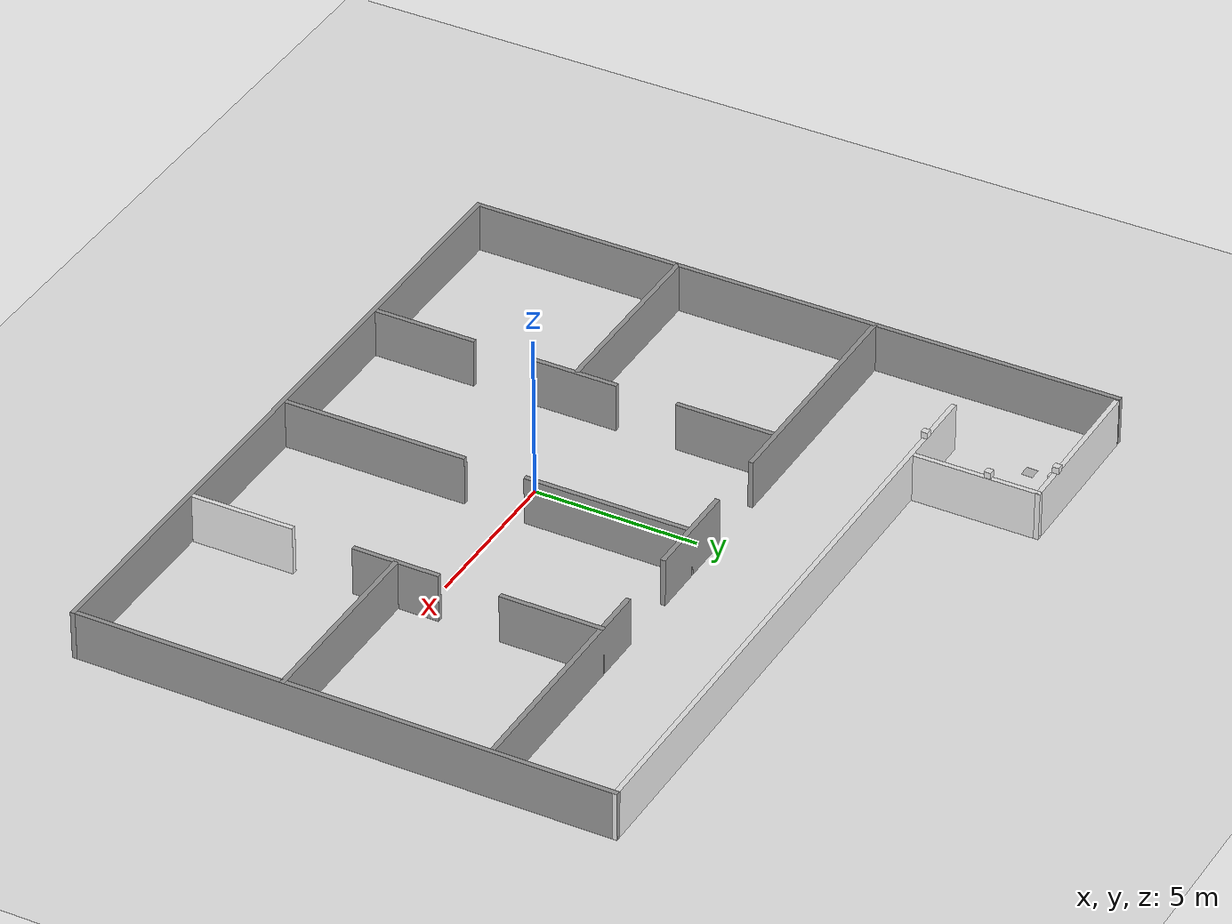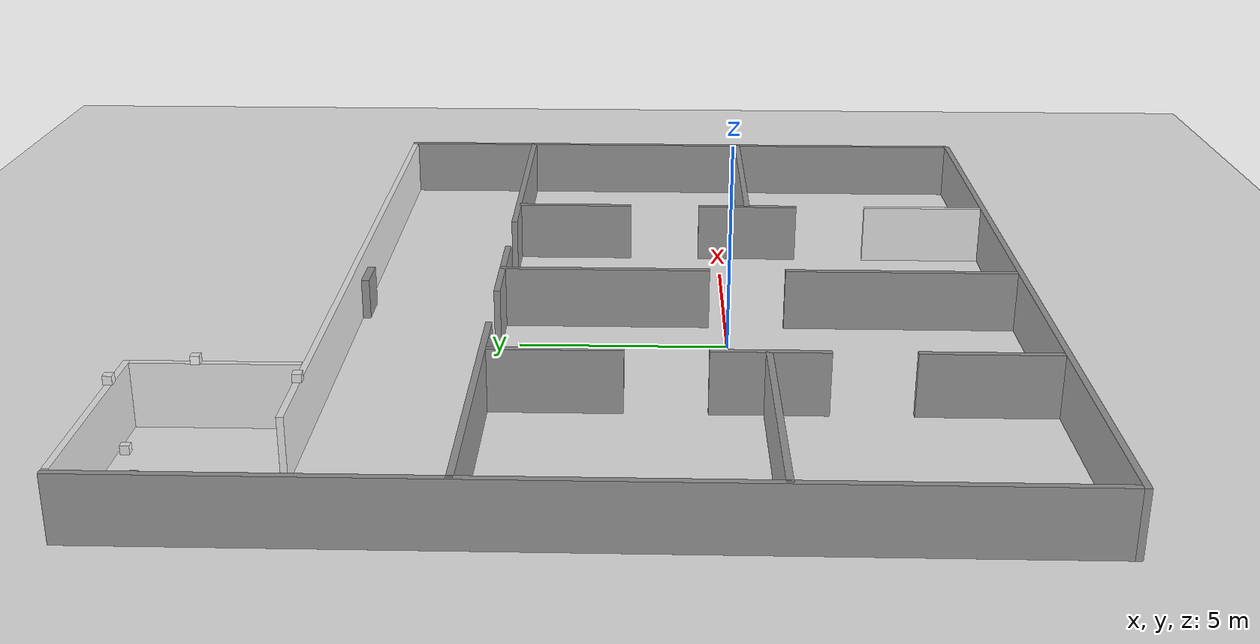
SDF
<sdf version="1.7">
 <world name="default">
  <scene><ambient>0.7 0.7 0.7 1</ambient><shadows>false</shadows></scene>
  <light name="sun" type="directional">
   <cast_shadows>0</cast_shadows>
   <pose>0 0 40 0 -0 0</pose>
   <diffuse>1 1 1 1</diffuse>
   <specular>0 0 0 1</specular>
   <attenuation>
    <range>1000</range>
    <constant>0.9</constant>
    <linear>0.01</linear>
    <quadratic>0.001</quadratic>
   </attenuation>
   <direction>-0.5 0.1 -0.9</direction>
   <spot><inner_angle>0</inner_angle><outer_angle>0</outer_angle><falloff>0</falloff></spot>
  </light>
  <model name="ground_plane">
   <static>1</static>
   <link name="link">
    <collision name="collision">
     <geometry><plane><normal>0 0 1</normal><size>100 100</size></plane></geometry>
     <surface>
      <contact><collide_bitmask>65535</collide_bitmask></contact>
      <friction><ode><mu>100</mu><mu2>50</mu2></ode></friction>
     </surface>
    </collision>
    <visual name="visual">
     <cast_shadows>0</cast_shadows>
     <geometry><plane><normal>0 0 1</normal><size>100 100</size></plane></geometry>
     <material>
      <script><uri>file://media/materials/scripts/gazebo.material</uri><name>Gazebo/White</name></script>
     </material>
    </visual>
   </link>
  </model>
  <gravity>0 0 -9.8</gravity>
  <magnetic_field>6e-06 2.3e-05 -4.2e-05</magnetic_field>
  <atmosphere type="adiabatic"/>
  <physics type="ode">
   <max_step_size>0.001</max_step_size>
   <real_time_factor>1</real_time_factor>
   <real_time_update_rate>1000</real_time_update_rate>
  </physics>
  <scene><ambient>0.4 0.4 0.4 1</ambient><background>0.7 0.7 0.7 1</background><shadows>1</shadows></scene>
  <spherical_coordinates>
   <surface_model>EARTH_WGS84</surface_model>
   <latitude_deg>0</latitude_deg>
   <longitude_deg>0</longitude_deg>
   <elevation>0</elevation>
   <heading_deg>0</heading_deg>
  </spherical_coordinates>
  <model name="Untitled">
   <pose>1.32665 2.93009 0 0 -0 0</pose>
   <link name="Wall_0">
    <collision name="Wall_0_Collision">
     <geometry><box><size>20.15 0.15 1.5</size></box></geometry>
     <pose>0 0 0.75 0 -0 0</pose>
    </collision>
    <visual name="Wall_0_Visual">
     <pose>0 0 0.75 0 -0 0</pose>
     <geometry><box><size>20.15 0.15 1.5</size></box></geometry>
     <material>
      <script><uri>file://media/materials/scripts/gazebo.material</uri><name>Gazebo/Grey</name></script>
      <ambient>0.1 0.1 0.1 1</ambient>
     </material>
     <meta><layer>0</layer></meta>
    </visual>
    <pose>-11 0.074999 0 0 -0 1.5708</pose>
   </link>
   <link name="Wall_15">
    <collision name="Wall_15_Collision">
     <geometry><box><size>7.5 0.15 1.5</size></box></geometry>
     <pose>0 0 0.75 0 -0 0</pose>
    </collision>
    <visual name="Wall_15_Visual">
     <pose>0 0 0.75 0 -0 0</pose>
     <geometry><box><size>7.5 0.15 1.5</size></box></geometry>
     <material>
      <script><uri>file://media/materials/scripts/gazebo.material</uri><name>Gazebo/Grey</name></script>
      <ambient>0.1 0.1 0.1 1</ambient>
     </material>
     <meta><layer>0</layer></meta>
    </visual>
    <pose>7.259 2.575 0 0 -0 3.14159</pose>
   </link>
   <link name="Wall_18">
    <collision name="Wall_18_Collision">
     <geometry><box><size>3.15 0.15 1.5</size></box></geometry>
     <pose>0 0 0.75 0 -0 0</pose>
    </collision>
    <visual name="Wall_18_Visual">
     <pose>0 0 0.75 0 -0 0</pose>
     <geometry><box><size>3.15 0.15 1.5</size></box></geometry>
     <material>
      <script><uri>file://media/materials/scripts/gazebo.material</uri><name>Gazebo/Grey</name></script>
      <ambient>0.1 0.1 0.1 1</ambient>
     </material>
     <meta><layer>0</layer></meta>
    </visual>
    <pose>0 2.575 0 0 -0 0</pose>
   </link>
   <link name="Wall_2">
    <collision name="Wall_2_Collision">
     <geometry><box><size>16.3 0.15 1.5</size></box></geometry>
     <pose>0 0 0.75 0 -0 0</pose>
    </collision>
    <visual name="Wall_2_Visual">
     <pose>0 0 0.75 0 -0 0</pose>
     <geometry><box><size>16.3 0.15 1.5</size></box></geometry>
     <material>
      <script><uri>file://media/materials/scripts/gazebo.material</uri><name>Gazebo/Grey</name></script>
      <ambient>0.1 0.1 0.1 1</ambient>
     </material>
     <meta><layer>0</layer></meta>
    </visual>
    <pose>11 -1.85 0 0 -0 1.5708</pose>
   </link>
   <link name="Wall_21">
    <collision name="Wall_21_Collision">
     <geometry><box><size>3.15 0.15 1.5</size></box></geometry>
     <pose>0 0 0.75 0 -0 0</pose>
    </collision>
    <visual name="Wall_21_Visual">
     <pose>0 0 0.75 0 -0 0</pose>
     <geometry><box><size>3.15 0.15 1.5</size></box></geometry>
     <material>
      <script><uri>file://media/materials/scripts/gazebo.material</uri><name>Gazebo/Grey</name></script>
      <ambient>0.1 0.1 0.1 1</ambient>
     </material>
     <meta><layer>0</layer></meta>
    </visual>
    <pose>-5 1.075 0 0 -0 -1.5708</pose>
   </link>
   <link name="Wall_25">
    <collision name="Wall_25_Collision">
     <geometry><box><size>3.15 0.15 1.5</size></box></geometry>
     <pose>0 0 0.75 0 -0 0</pose>
    </collision>
    <visual name="Wall_25_Visual">
     <pose>0 0 0.75 0 -0 0</pose>
     <geometry><box><size>3.15 0.15 1.5</size></box></geometry>
     <material>
      <script><uri>file://media/materials/scripts/gazebo.material</uri><name>Gazebo/Grey</name></script>
      <ambient>0.1 0.1 0.1 1</ambient>
     </material>
     <meta><layer>0</layer></meta>
    </visual>
    <pose>-5 -8.425 0 0 -0 1.5708</pose>
   </link>
   <link name="Wall_27">
    <collision name="Wall_27_Collision">
     <geometry><box><size>2.65 0.15 1.5</size></box></geometry>
     <pose>0 0 0.75 0 -0 0</pose>
    </collision>
    <visual name="Wall_27_Visual">
     <pose>0 0 0.75 0 -0 0</pose>
     <geometry><box><size>2.65 0.15 1.5</size></box></geometry>
     <material>
      <script><uri>file://media/materials/scripts/gazebo.material</uri><name>Gazebo/Grey</name></script>
      <ambient>0.1 0.1 0.1 1</ambient>
     </material>
     <meta><layer>0</layer></meta>
    </visual>
    <pose>-5 -3.675 0 0 -0 -1.5708</pose>
   </link>
   <link name="Wall_29">
    <collision name="Wall_29_Collision">
     <geometry><box><size>6 0.15 1.5</size></box></geometry>
     <pose>0 0 0.75 0 -0 0</pose>
    </collision>
    <visual name="Wall_29_Visual">
     <pose>0 0 0.75 0 -0 0</pose>
     <geometry><box><size>6 0.15 1.5</size></box></geometry>
     <material>
      <script><uri>file://media/materials/scripts/gazebo.material</uri><name>Gazebo/Grey</name></script>
      <ambient>0.1 0.1 0.1 1</ambient>
     </material>
     <meta><layer>0</layer></meta>
    </visual>
    <pose>-8.017 -3.638 0 0 -0 3.14159</pose>
   </link>
   <link name="Wall_31">
    <collision name="Wall_31_Collision">
     <geometry><box><size>5.15 0.15 1.5</size></box></geometry>
     <pose>0 0 0.75 0 -0 0</pose>
    </collision>
    <visual name="Wall_31_Visual">
     <pose>0 0 0.75 0 -0 0</pose>
     <geometry><box><size>5.15 0.15 1.5</size></box></geometry>
     <material>
      <script><uri>file://media/materials/scripts/gazebo.material</uri><name>Gazebo/Grey</name></script>
      <ambient>0.1 0.1 0.1 1</ambient>
     </material>
     <meta><layer>0</layer></meta>
    </visual>
    <pose>0 0.074999 0 0 -0 -1.5708</pose>
   </link>
   <link name="Wall_33">
    <collision name="Wall_33_Collision">
     <geometry><box><size>5.65 0.15 1.5</size></box></geometry>
     <pose>0 0 0.75 0 -0 0</pose>
    </collision>
    <visual name="Wall_33_Visual">
     <pose>0 0 0.75 0 -0 0</pose>
     <geometry><box><size>5.65 0.15 1.5</size></box></geometry>
     <material>
      <script><uri>file://media/materials/scripts/gazebo.material</uri><name>Gazebo/Grey</name></script>
      <ambient>0.1 0.1 0.1 1</ambient>
     </material>
     <meta><layer>0</layer></meta>
    </visual>
    <pose>0 -7.175 0 0 -0 1.5708</pose>
   </link>
   <link name="Wall_35">
    <collision name="Wall_35_Collision">
     <geometry><box><size>3.15 0.15 1.5</size></box></geometry>
     <pose>0 0 0.75 0 -0 0</pose>
    </collision>
    <visual name="Wall_35_Visual">
     <pose>0 0 0.75 0 -0 0</pose>
     <geometry><box><size>3.15 0.15 1.5</size></box></geometry>
     <material>
      <script><uri>file://media/materials/scripts/gazebo.material</uri><name>Gazebo/Grey</name></script>
      <ambient>0.1 0.1 0.1 1</ambient>
     </material>
     <meta><layer>0</layer></meta>
    </visual>
    <pose>5 1.075 0 0 -0 -1.5708</pose>
   </link>
   <link name="Wall_37">
    <collision name="Wall_37_Collision">
     <geometry><box><size>2.65 0.15 1.5</size></box></geometry>
     <pose>0 0 0.75 0 -0 0</pose>
    </collision>
    <visual name="Wall_37_Visual">
     <pose>0 0 0.75 0 -0 0</pose>
     <geometry><box><size>2.65 0.15 1.5</size></box></geometry>
     <material>
      <script><uri>file://media/materials/scripts/gazebo.material</uri><name>Gazebo/Grey</name></script>
      <ambient>0.1 0.1 0.1 1</ambient>
     </material>
     <meta><layer>0</layer></meta>
    </visual>
    <pose>5 -3.675 0 0 -0 -1.5708</pose>
   </link>
   <link name="Wall_39">
    <collision name="Wall_39_Collision">
     <geometry><box><size>6.056 0.15 1.5</size></box></geometry>
     <pose>0 0 0.75 0 -0 0</pose>
    </collision>
    <visual name="Wall_39_Visual">
     <pose>0 0 0.75 0 -0 0</pose>
     <geometry><box><size>6.056 0.15 1.5</size></box></geometry>
     <material>
      <script><uri>file://media/materials/scripts/gazebo.material</uri><name>Gazebo/Grey</name></script>
      <ambient>0.1 0.1 0.1 1</ambient>
     </material>
     <meta><layer>0</layer></meta>
    </visual>
    <pose>8.047 -3.663 0 0 -0 0</pose>
   </link>
   <link name="Wall_4">
    <collision name="Wall_4_Collision">
     <geometry><box><size>19.65 0.15 1.5</size></box></geometry>
     <pose>0 0 0.75 0 -0 0</pose>
    </collision>
    <visual name="Wall_4_Visual">
     <pose>0 0 0.75 0 -0 0</pose>
     <geometry><box><size>19.65 0.15 1.5</size></box></geometry>
     <material>
      <script><uri>file://media/materials/scripts/gazebo.material</uri><name>Gazebo/White</name></script>
      <ambient>0.9 0.9 0.9 1</ambient>
     </material>
     <meta><layer>0</layer></meta>
     <cast_shadows>0</cast_shadows>
    </visual>
    <pose>1.25 6.225 0 0 -0 0</pose>
   </link>
   <link name="Wall_42">
    <collision name="Wall_42_Collision">
     <geometry><box><size>3.15 0.15 1.5</size></box></geometry>
     <pose>0 0 0.75 0 -0 0</pose>
    </collision>
    <visual name="Wall_42_Visual">
     <pose>0 0 0.75 0 -0 0</pose>
     <geometry><box><size>3.15 0.15 1.5</size></box></geometry>
     <material>
      <script><uri>file://media/materials/scripts/gazebo.material</uri><name>Gazebo/White</name></script>
      <ambient>0.9 0.9 0.9 1</ambient>
     </material>
     <meta><layer>0</layer></meta>
    </visual>
    <pose>5 -8.425 0 0 -0 1.5708</pose>
   </link>
   <link name="Wall_45">
    <collision name="Wall_45_Collision">
     <geometry><box><size>3.841 0.15 1.5</size></box></geometry>
     <pose>0 0 0.75 0 -0 0</pose>
    </collision>
    <visual name="Wall_45_Visual">
     <pose>0 0 0.75 0 -0 0</pose>
     <geometry><box><size>3.841 0.15 1.5</size></box></geometry>
     <material>
      <script><uri>file://media/materials/scripts/gazebo.material</uri><name>Gazebo/White</name></script>
      <ambient>0.9 0.9 0.9 1</ambient>
     </material>
     <cast_shadows>0</cast_shadows>
     <meta><layer>0</layer></meta>
    </visual>
    <pose>-5.955 8.2295 0 0 -0 1.5708</pose>
   </link>
   <link name="Wall_47">
    <collision name="Wall_47_Collision">
     <geometry><box><size>5 0.15 1.5</size></box></geometry>
     <pose>0 0 0.75 0 -0 0</pose>
    </collision>
    <visual name="Wall_47_Visual">
     <pose>0 0 0.75 0 -0 0</pose>
     <geometry><box><size>5 0.15 1.5</size></box></geometry>
     <material>
      <script><uri>file://media/materials/scripts/gazebo.material</uri><name>Gazebo/White</name></script>
      <ambient>0.9 0.9 0.9 1</ambient>
     </material>
     <meta><layer>0</layer></meta>
     <cast_shadows>0</cast_shadows>
    </visual>
    <pose>-8.38 10.075 0 0 -0 3.14159</pose>
   </link>
   <link name="Wall_6">
    <collision name="Wall_6_Collision">
     <geometry><box><size>22.15 0.15 1.5</size></box></geometry>
     <pose>0 0 0.75 0 -0 0</pose>
    </collision>
    <visual name="Wall_6_Visual">
     <pose>0 0 0.75 0 -0 0</pose>
     <geometry><box><size>22.15 0.15 1.5</size></box></geometry>
     <material>
      <script><uri>file://media/materials/scripts/gazebo.material</uri><name>Gazebo/Grey</name></script>
      <ambient>0.1 0.1 0.1 1</ambient>
     </material>
     <meta><layer>0</layer></meta>
    </visual>
    <pose>0 -10.075 0 0 -0 0</pose>
   </link>
   <link name="Wall_8">
    <collision name="Wall_8_Collision">
     <geometry><box><size>7.5 0.15 1.5</size></box></geometry>
     <pose>0 0 0.75 0 -0 0</pose>
    </collision>
    <visual name="Wall_8_Visual">
     <pose>0 0 0.75 0 -0 0</pose>
     <geometry><box><size>7.5 0.15 1.5</size></box></geometry>
     <material>
      <script><uri>file://media/materials/scripts/gazebo.material</uri><name>Gazebo/Grey</name></script>
      <ambient>0.1 0.1 0.1 1</ambient>
     </material>
     <meta><layer>0</layer></meta>
    </visual>
    <pose>-7.253 2.575 0 0 -0 0</pose>
   </link>
   <static>1</static>
  </model>
  <model name="marker11_box">
   <link name="marker">
    <inertial>
     <mass>0.1</mass>
     <inertia><ixx>0</ixx><ixy>0</ixy><ixz>0</ixz><iyy>0</iyy><iyz>0</iyz><izz>0</izz></inertia>
    </inertial>
    <self_collide>1</self_collide>
    <pose>-0.76428 -0.101106 0.120004 -0.015494 1.56996 -0.015507</pose>
    <visual name="visual">
     <geometry><box><size>0.2 0.2 0.001</size></box></geometry>
     <material>
      <script>
       <uri>model://marker11/material/scripts</uri>
       <uri>model://marker11/material/textures</uri>
       <name>Aruco/marker11</name>
      </script>
      <shader type="pixel"><normal_map>__default__</normal_map></shader>
      <emissive>0 0 0 1</emissive>
      <ambient>1 1 1 1</ambient>
      <diffuse>1 1 1 1</diffuse>
      <specular>0 0 0 1</specular>
     </material>
     <cast_shadows>0</cast_shadows>
    </visual>
    <collision name="collision">
     <geometry><box><size>0.2 0.2 0.02</size></box></geometry>
     <surface>
      <friction>
       <ode><mu>1</mu><mu2>1</mu2><fdir1>0 0 0</fdir1><slip1>0</slip1><slip2>0</slip2></ode>
       <torsional>
        <coefficient>1</coefficient>
        <patch_radius>0</patch_radius>
        <surface_radius>0</surface_radius>
        <use_patch_radius>1</use_patch_radius>
        <ode><slip>0</slip></ode>
       </torsional>
      </friction>
      <bounce><restitution_coefficient>0</restitution_coefficient><threshold>1e+06</threshold></bounce>
      <contact>
       <collide_without_contact>0</collide_without_contact>
       <collide_without_contact_bitmask>1</collide_without_contact_bitmask>
       <collide_bitmask>1</collide_bitmask>
       <ode>
        <soft_cfm>0</soft_cfm>
        <soft_erp>0.2</soft_erp>
        <kp>1e+13</kp>
        <kd>1</kd>
        <max_vel>0.01</max_vel>
        <min_depth>0</min_depth>
       </ode>
       <bullet>
        <split_impulse>1</split_impulse>
        <split_impulse_penetration_threshold>-0.01</split_impulse_penetration_threshold>
        <soft_cfm>0</soft_cfm>
        <soft_erp>0.2</soft_erp>
        <kp>1e+13</kp>
        <kd>1</kd>
       </bullet>
      </contact>
     </surface>
    </collision>
   </link>
   <link name="link_1">
    <inertial>
     <mass>1</mass>
     <inertia>
      <ixx>0.166667</ixx>
      <ixy>0</ixy>
      <ixz>0</ixz>
      <iyy>0.166667</iyy>
      <iyz>0</iyz>
      <izz>0.166667</izz>
     </inertia>
    </inertial>
    <pose>-0.86428 -0.101106 0.12 -1.3e-05 -4.2e-05 0</pose>
    <visual name="visual">
     <geometry><box><size>0.2 0.2 0.2</size></box></geometry>
     <material>
      <lighting>1</lighting>
      <script><uri>file://media/materials/scripts/gazebo.material</uri><name>Gazebo/White</name></script>
      <shader type="pixel"><normal_map>__default__</normal_map></shader>
      <emissive>0 0 0 1</emissive>
      <ambient>0.9 0.9 0.9 1</ambient>
      <diffuse>0.7 0.7 0.7 1</diffuse>
      <specular>0.01 0.01 0.01 1</specular>
     </material>
     <cast_shadows>0</cast_shadows>
    </visual>
    <collision name="collision">
     <geometry><box><size>0.2 0.2 0.2</size></box></geometry>
     <surface>
      <friction>
       <ode><mu>1</mu><mu2>1</mu2><fdir1>0 0 0</fdir1><slip1>0</slip1><slip2>0</slip2></ode>
       <torsional>
        <coefficient>1</coefficient>
        <patch_radius>0</patch_radius>
        <surface_radius>0</surface_radius>
        <use_patch_radius>1</use_patch_radius>
        <ode><slip>0</slip></ode>
       </torsional>
      </friction>
      <bounce><restitution_coefficient>0</restitution_coefficient><threshold>1e+06</threshold></bounce>
      <contact>
       <collide_without_contact>0</collide_without_contact>
       <collide_without_contact_bitmask>1</collide_without_contact_bitmask>
       <collide_bitmask>1</collide_bitmask>
       <ode>
        <soft_cfm>0</soft_cfm>
        <soft_erp>0.2</soft_erp>
        <kp>1e+13</kp>
        <kd>1</kd>
        <max_vel>0.01</max_vel>
        <min_depth>0</min_depth>
       </ode>
       <bullet>
        <split_impulse>1</split_impulse>
        <split_impulse_penetration_threshold>-0.01</split_impulse_penetration_threshold>
        <soft_cfm>0</soft_cfm>
        <soft_erp>0.2</soft_erp>
        <kp>1e+13</kp>
        <kd>1</kd>
       </bullet>
      </contact>
     </surface>
    </collision>
   </link>
   <joint name="link_1_JOINT_3" type="fixed">
    <parent>link_1</parent>
    <child>marker</child>
    <physics>
     <ode><limit><cfm>0</cfm><erp>0.2</erp></limit><suspension><cfm>0</cfm><erp>0.2</erp></suspension></ode>
    </physics>
   </joint>
   <static>0</static>
   <pose>-5.64548 12.1496 1.47997 2.6e-05 4.1e-05 -1.5695</pose>
  </model>
  <model name="marker12_box">
   <link name="marker">
    <inertial>
     <mass>0.1</mass>
     <inertia><ixx>0</ixx><ixy>0</ixy><ixz>0</ixz><iyy>0</iyy><iyz>0</iyz><izz>0</izz></inertia>
    </inertial>
    <self_collide>1</self_collide>
    <pose>-0.76428 -0.101106 0.120004 -0.015494 1.56996 -0.015507</pose>
    <visual name="visual">
     <geometry><box><size>0.2 0.2 0.001</size></box></geometry>
     <material>
      <script>
       <uri>model://marker12/material/scripts</uri>
       <uri>model://marker12/material/textures</uri>
       <name>Aruco/marker12</name>
      </script>
      <shader type="pixel"><normal_map>__default__</normal_map></shader>
      <emissive>0 0 0 1</emissive>
      <ambient>1 1 1 1</ambient>
      <diffuse>1 1 1 1</diffuse>
      <specular>0 0 0 1</specular>
     </material>
     <cast_shadows>0</cast_shadows>
    </visual>
    <collision name="collision">
     <geometry><box><size>0.2 0.2 0.02</size></box></geometry>
     <surface>
      <friction>
       <ode><mu>1</mu><mu2>1</mu2><fdir1>0 0 0</fdir1><slip1>0</slip1><slip2>0</slip2></ode>
       <torsional>
        <coefficient>1</coefficient>
        <patch_radius>0</patch_radius>
        <surface_radius>0</surface_radius>
        <use_patch_radius>1</use_patch_radius>
        <ode><slip>0</slip></ode>
       </torsional>
      </friction>
      <bounce><restitution_coefficient>0</restitution_coefficient><threshold>1e+06</threshold></bounce>
      <contact>
       <collide_without_contact>0</collide_without_contact>
       <collide_without_contact_bitmask>1</collide_without_contact_bitmask>
       <collide_bitmask>1</collide_bitmask>
       <ode>
        <soft_cfm>0</soft_cfm>
        <soft_erp>0.2</soft_erp>
        <kp>1e+13</kp>
        <kd>1</kd>
        <max_vel>0.01</max_vel>
        <min_depth>0</min_depth>
       </ode>
       <bullet>
        <split_impulse>1</split_impulse>
        <split_impulse_penetration_threshold>-0.01</split_impulse_penetration_threshold>
        <soft_cfm>0</soft_cfm>
        <soft_erp>0.2</soft_erp>
        <kp>1e+13</kp>
        <kd>1</kd>
       </bullet>
      </contact>
     </surface>
    </collision>
   </link>
   <link name="link_1">
    <inertial>
     <mass>1</mass>
     <inertia>
      <ixx>0.166667</ixx>
      <ixy>0</ixy>
      <ixz>0</ixz>
      <iyy>0.166667</iyy>
      <iyz>0</iyz>
      <izz>0.166667</izz>
     </inertia>
    </inertial>
    <pose>-0.86428 -0.101106 0.12 -1.3e-05 -4.2e-05 0</pose>
    <visual name="visual">
     <geometry><box><size>0.2 0.2 0.2</size></box></geometry>
     <material>
      <lighting>1</lighting>
      <script><uri>file://media/materials/scripts/gazebo.material</uri><name>Gazebo/White</name></script>
      <shader type="pixel"><normal_map>__default__</normal_map></shader>
      <emissive>0 0 0 1</emissive>
      <ambient>0.9 0.9 0.9 1</ambient>
      <diffuse>0.7 0.7 0.7 1</diffuse>
      <specular>0.01 0.01 0.01 1</specular>
     </material>
     <cast_shadows>0</cast_shadows>
    </visual>
    <collision name="collision">
     <geometry><box><size>0.2 0.2 0.2</size></box></geometry>
     <surface>
      <friction>
       <ode><mu>1</mu><mu2>1</mu2><fdir1>0 0 0</fdir1><slip1>0</slip1><slip2>0</slip2></ode>
       <torsional>
        <coefficient>1</coefficient>
        <patch_radius>0</patch_radius>
        <surface_radius>0</surface_radius>
        <use_patch_radius>1</use_patch_radius>
        <ode><slip>0</slip></ode>
       </torsional>
      </friction>
      <bounce><restitution_coefficient>0</restitution_coefficient><threshold>1e+06</threshold></bounce>
      <contact>
       <collide_without_contact>0</collide_without_contact>
       <collide_without_contact_bitmask>1</collide_without_contact_bitmask>
       <collide_bitmask>1</collide_bitmask>
       <ode>
        <soft_cfm>0</soft_cfm>
        <soft_erp>0.2</soft_erp>
        <kp>1e+13</kp>
        <kd>1</kd>
        <max_vel>0.01</max_vel>
        <min_depth>0</min_depth>
       </ode>
       <bullet>
        <split_impulse>1</split_impulse>
        <split_impulse_penetration_threshold>-0.01</split_impulse_penetration_threshold>
        <soft_cfm>0</soft_cfm>
        <soft_erp>0.2</soft_erp>
        <kp>1e+13</kp>
        <kd>1</kd>
       </bullet>
      </contact>
     </surface>
    </collision>
   </link>
   <joint name="link_1_JOINT_3" type="fixed">
    <parent>link_1</parent>
    <child>marker</child>
    <physics>
     <ode><limit><cfm>0</cfm><erp>0.2</erp></limit><suspension><cfm>0</cfm><erp>0.2</erp></suspension></ode>
    </physics>
   </joint>
   <static>0</static>
   <pose>-5.78885 11.9061 -0.020015 2.9e-05 1.8e-05 -1.52429</pose>
  </model>
  <model name="marker13_box">
   <link name="marker">
    <inertial>
     <mass>0.1</mass>
     <inertia><ixx>0</ixx><ixy>0</ixy><ixz>0</ixz><iyy>0</iyy><iyz>0</iyz><izz>0</izz></inertia>
    </inertial>
    <self_collide>1</self_collide>
    <pose>-0.76428 -0.101106 0.120004 -0.015494 1.56996 -0.015507</pose>
    <visual name="visual">
     <geometry><box><size>0.2 0.2 0.001</size></box></geometry>
     <material>
      <script>
       <uri>model://marker13/material/scripts</uri>
       <uri>model://marker13/material/textures</uri>
       <name>Aruco/marker13</name>
      </script>
      <shader type="pixel"><normal_map>__default__</normal_map></shader>
      <emissive>0 0 0 1</emissive>
      <ambient>1 1 1 1</ambient>
      <diffuse>1 1 1 1</diffuse>
      <specular>0 0 0 1</specular>
     </material>
     <cast_shadows>0</cast_shadows>
    </visual>
    <collision name="collision">
     <geometry><box><size>0.2 0.2 0.02</size></box></geometry>
     <surface>
      <friction>
       <ode><mu>1</mu><mu2>1</mu2><fdir1>0 0 0</fdir1><slip1>0</slip1><slip2>0</slip2></ode>
       <torsional>
        <coefficient>1</coefficient>
        <patch_radius>0</patch_radius>
        <surface_radius>0</surface_radius>
        <use_patch_radius>1</use_patch_radius>
        <ode><slip>0</slip></ode>
       </torsional>
      </friction>
      <bounce><restitution_coefficient>0</restitution_coefficient><threshold>1e+06</threshold></bounce>
      <contact>
       <collide_without_contact>0</collide_without_contact>
       <collide_without_contact_bitmask>1</collide_without_contact_bitmask>
       <collide_bitmask>1</collide_bitmask>
       <ode>
        <soft_cfm>0</soft_cfm>
        <soft_erp>0.2</soft_erp>
        <kp>1e+13</kp>
        <kd>1</kd>
        <max_vel>0.01</max_vel>
        <min_depth>0</min_depth>
       </ode>
       <bullet>
        <split_impulse>1</split_impulse>
        <split_impulse_penetration_threshold>-0.01</split_impulse_penetration_threshold>
        <soft_cfm>0</soft_cfm>
        <soft_erp>0.2</soft_erp>
        <kp>1e+13</kp>
        <kd>1</kd>
       </bullet>
      </contact>
     </surface>
    </collision>
   </link>
   <link name="link_1">
    <inertial>
     <mass>1</mass>
     <inertia>
      <ixx>0.166667</ixx>
      <ixy>0</ixy>
      <ixz>0</ixz>
      <iyy>0.166667</iyy>
      <iyz>0</iyz>
      <izz>0.166667</izz>
     </inertia>
    </inertial>
    <pose>-0.86428 -0.101106 0.12 -1.3e-05 -4.2e-05 0</pose>
    <visual name="visual">
     <geometry><box><size>0.2 0.2 0.2</size></box></geometry>
     <material>
      <lighting>1</lighting>
      <script><uri>file://media/materials/scripts/gazebo.material</uri><name>Gazebo/White</name></script>
      <shader type="pixel"><normal_map>__default__</normal_map></shader>
      <emissive>0 0 0 1</emissive>
      <ambient>0.9 0.9 0.9 1</ambient>
      <specular>0.01 0.01 0.01 1</specular>
     </material>
     <cast_shadows>0</cast_shadows>
    </visual>
    <collision name="collision">
     <geometry><box><size>0.2 0.2 0.2</size></box></geometry>
     <surface>
      <friction>
       <ode><mu>1</mu><mu2>1</mu2><fdir1>0 0 0</fdir1><slip1>0</slip1><slip2>0</slip2></ode>
       <torsional>
        <coefficient>1</coefficient>
        <patch_radius>0</patch_radius>
        <surface_radius>0</surface_radius>
        <use_patch_radius>1</use_patch_radius>
        <ode><slip>0</slip></ode>
       </torsional>
      </friction>
      <bounce><restitution_coefficient>0</restitution_coefficient><threshold>1e+06</threshold></bounce>
      <contact>
       <collide_without_contact>0</collide_without_contact>
       <collide_without_contact_bitmask>1</collide_without_contact_bitmask>
       <collide_bitmask>1</collide_bitmask>
       <ode>
        <soft_cfm>0</soft_cfm>
        <soft_erp>0.2</soft_erp>
        <kp>1e+13</kp>
        <kd>1</kd>
        <max_vel>0.01</max_vel>
        <min_depth>0</min_depth>
       </ode>
       <bullet>
        <split_impulse>1</split_impulse>
        <split_impulse_penetration_threshold>-0.01</split_impulse_penetration_threshold>
        <soft_cfm>0</soft_cfm>
        <soft_erp>0.2</soft_erp>
        <kp>1e+13</kp>
        <kd>1</kd>
       </bullet>
      </contact>
     </surface>
    </collision>
   </link>
   <joint name="link_1_JOINT_3" type="fixed">
    <parent>link_1</parent>
    <child>marker</child>
    <physics>
     <ode><limit><cfm>0</cfm><erp>0.2</erp></limit><suspension><cfm>0</cfm><erp>0.2</erp></suspension></ode>
    </physics>
   </joint>
   <static>0</static>
   <pose>-5.53047 11.392 1.47996 1.5e-05 4.3e-05 3.13753</pose>
  </model>
  <model name="marker14">
   <static>0</static>
   <link name="marker">
    <inertial>
     <mass>0.1</mass>
     <inertia><ixx>0</ixx><ixy>0</ixy><ixz>0</ixz><iyy>0</iyy><iyz>0</iyz><izz>0</izz></inertia>
    </inertial>
    <visual name="visual">
     <geometry><box><size>0.368647 0.350422 0.001</size></box></geometry>
     <material>
      <script>
       <uri>model://marker14/material/scripts</uri>
       <uri>model://marker14/material/textures</uri>
       <name>Aruco/marker14</name>
      </script>
     </material>
    </visual>
    <collision name="collision"><geometry><box><size>0.368647 0.350422 0.02</size></box></geometry></collision>
    <self_collide>1</self_collide>
   </link>
   <pose>-7.24908 11.5235 0.01 0 1e-06 0</pose>
  </model>
  <model name="marker15_box">
   <link name="marker">
    <inertial>
     <mass>0.1</mass>
     <inertia><ixx>0</ixx><ixy>0</ixy><ixz>0</ixz><iyy>0</iyy><iyz>0</iyz><izz>0</izz></inertia>
    </inertial>
    <self_collide>1</self_collide>
    <pose>-0.76428 -0.101106 0.120004 -0.015494 1.56996 -0.015507</pose>
    <visual name="visual">
     <geometry><box><size>0.2 0.2 0.001</size></box></geometry>
     <material>
      <script>
       <uri>model://marker15/material/scripts</uri>
       <uri>model://marker15/material/textures</uri>
       <name>Aruco/marker15</name>
      </script>
      <shader type="pixel"><normal_map>__default__</normal_map></shader>
      <emissive>0 0 0 1</emissive>
      <ambient>1 1 1 1</ambient>
      <diffuse>1 1 1 1</diffuse>
      <specular>0 0 0 1</specular>
     </material>
     <cast_shadows>0</cast_shadows>
    </visual>
    <collision name="collision">
     <geometry><box><size>0.2 0.2 0.02</size></box></geometry>
     <surface>
      <friction>
       <ode><mu>1</mu><mu2>1</mu2><fdir1>0 0 0</fdir1><slip1>0</slip1><slip2>0</slip2></ode>
       <torsional>
        <coefficient>1</coefficient>
        <patch_radius>0</patch_radius>
        <surface_radius>0</surface_radius>
        <use_patch_radius>1</use_patch_radius>
        <ode><slip>0</slip></ode>
       </torsional>
      </friction>
      <bounce><restitution_coefficient>0</restitution_coefficient><threshold>1e+06</threshold></bounce>
      <contact>
       <collide_without_contact>0</collide_without_contact>
       <collide_without_contact_bitmask>1</collide_without_contact_bitmask>
       <collide_bitmask>1</collide_bitmask>
       <ode>
        <soft_cfm>0</soft_cfm>
        <soft_erp>0.2</soft_erp>
        <kp>1e+13</kp>
        <kd>1</kd>
        <max_vel>0.01</max_vel>
        <min_depth>0</min_depth>
       </ode>
       <bullet>
        <split_impulse>1</split_impulse>
        <split_impulse_penetration_threshold>-0.01</split_impulse_penetration_threshold>
        <soft_cfm>0</soft_cfm>
        <soft_erp>0.2</soft_erp>
        <kp>1e+13</kp>
        <kd>1</kd>
       </bullet>
      </contact>
     </surface>
    </collision>
   </link>
   <link name="link_1">
    <inertial>
     <mass>1</mass>
     <inertia>
      <ixx>0.166667</ixx>
      <ixy>0</ixy>
      <ixz>0</ixz>
      <iyy>0.166667</iyy>
      <iyz>0</iyz>
      <izz>0.166667</izz>
     </inertia>
    </inertial>
    <pose>-0.86428 -0.101106 0.12 -1.3e-05 -4.2e-05 0</pose>
    <visual name="visual">
     <geometry><box><size>0.2 0.2 0.2</size></box></geometry>
     <material>
      <lighting>1</lighting>
      <script><uri>file://media/materials/scripts/gazebo.material</uri><name>Gazebo/White</name></script>
      <shader type="pixel"><normal_map>__default__</normal_map></shader>
      <emissive>0 0 0 1</emissive>
      <ambient>0.9 0.9 0.9 1</ambient>
      <diffuse>0.7 0.7 0.7 1</diffuse>
      <specular>0.01 0.01 0.01 1</specular>
     </material>
     <cast_shadows>0</cast_shadows>
    </visual>
    <collision name="collision">
     <geometry><box><size>0.2 0.2 0.2</size></box></geometry>
     <surface>
      <friction>
       <ode><mu>1</mu><mu2>1</mu2><fdir1>0 0 0</fdir1><slip1>0</slip1><slip2>0</slip2></ode>
       <torsional>
        <coefficient>1</coefficient>
        <patch_radius>0</patch_radius>
        <surface_radius>0</surface_radius>
        <use_patch_radius>1</use_patch_radius>
        <ode><slip>0</slip></ode>
       </torsional>
      </friction>
      <bounce><restitution_coefficient>0</restitution_coefficient><threshold>1e+06</threshold></bounce>
      <contact>
       <collide_without_contact>0</collide_without_contact>
       <collide_without_contact_bitmask>1</collide_without_contact_bitmask>
       <collide_bitmask>1</collide_bitmask>
       <ode>
        <soft_cfm>0</soft_cfm>
        <soft_erp>0.2</soft_erp>
        <kp>1e+13</kp>
        <kd>1</kd>
        <max_vel>0.01</max_vel>
        <min_depth>0</min_depth>
       </ode>
       <bullet>
        <split_impulse>1</split_impulse>
        <split_impulse_penetration_threshold>-0.01</split_impulse_penetration_threshold>
        <soft_cfm>0</soft_cfm>
        <soft_erp>0.2</soft_erp>
        <kp>1e+13</kp>
        <kd>1</kd>
       </bullet>
      </contact>
     </surface>
    </collision>
   </link>
   <joint name="link_1_JOINT_3" type="fixed">
    <parent>link_1</parent>
    <child>marker</child>
    <physics>
     <ode><limit><cfm>0</cfm><erp>0.2</erp></limit><suspension><cfm>0</cfm><erp>0.2</erp></suspension></ode>
    </physics>
   </joint>
   <static>0</static>
   <pose>-5.64749 10.0063 1.47997 1.7e-05 4.2e-05 1.59523</pose>
  </model>
  <model name="marker16_box">
   <link name="marker">
    <inertial>
     <mass>0.1</mass>
     <inertia><ixx>0</ixx><ixy>0</ixy><ixz>0</ixz><iyy>0</iyy><iyz>0</iyz><izz>0</izz></inertia>
    </inertial>
    <self_collide>1</self_collide>
    <pose>-0.76428 -0.101106 0.120004 -0.015494 1.56996 -0.015507</pose>
    <visual name="visual">
     <geometry><box><size>0.2 0.2 0.001</size></box></geometry>
     <material>
      <script>
       <uri>model://marker16/material/scripts</uri>
       <uri>model://marker16/material/textures</uri>
       <name>Aruco/marker16</name>
      </script>
      <shader type="pixel"><normal_map>__default__</normal_map></shader>
      <emissive>0 0 0 1</emissive>
      <ambient>1 1 1 1</ambient>
      <diffuse>1 1 1 1</diffuse>
      <specular>0 0 0 1</specular>
     </material>
     <cast_shadows>0</cast_shadows>
    </visual>
    <collision name="collision">
     <geometry><box><size>0.2 0.2 0.02</size></box></geometry>
     <surface>
      <friction>
       <ode><mu>1</mu><mu2>1</mu2><fdir1>0 0 0</fdir1><slip1>0</slip1><slip2>0</slip2></ode>
       <torsional>
        <coefficient>1</coefficient>
        <patch_radius>0</patch_radius>
        <surface_radius>0</surface_radius>
        <use_patch_radius>1</use_patch_radius>
        <ode><slip>0</slip></ode>
       </torsional>
      </friction>
      <bounce><restitution_coefficient>0</restitution_coefficient><threshold>1e+06</threshold></bounce>
      <contact>
       <collide_without_contact>0</collide_without_contact>
       <collide_without_contact_bitmask>1</collide_without_contact_bitmask>
       <collide_bitmask>1</collide_bitmask>
       <ode>
        <soft_cfm>0</soft_cfm>
        <soft_erp>0.2</soft_erp>
        <kp>1e+13</kp>
        <kd>1</kd>
        <max_vel>0.01</max_vel>
        <min_depth>0</min_depth>
       </ode>
       <bullet>
        <split_impulse>1</split_impulse>
        <split_impulse_penetration_threshold>-0.01</split_impulse_penetration_threshold>
        <soft_cfm>0</soft_cfm>
        <soft_erp>0.2</soft_erp>
        <kp>1e+13</kp>
        <kd>1</kd>
       </bullet>
      </contact>
     </surface>
    </collision>
   </link>
   <link name="link_1">
    <inertial>
     <mass>1</mass>
     <inertia>
      <ixx>0.166667</ixx>
      <ixy>0</ixy>
      <ixz>0</ixz>
      <iyy>0.166667</iyy>
      <iyz>0</iyz>
      <izz>0.166667</izz>
     </inertia>
    </inertial>
    <pose>-0.86428 -0.101106 0.12 -1.3e-05 -4.2e-05 0</pose>
    <visual name="visual">
     <geometry><box><size>0.2 0.2 0.2</size></box></geometry>
     <material>
      <lighting>1</lighting>
      <script><uri>file://media/materials/scripts/gazebo.material</uri><name>Gazebo/White</name></script>
      <shader type="pixel"><normal_map>__default__</normal_map></shader>
      <emissive>0 0 0 1</emissive>
      <ambient>0.9 0.9 0.9 1</ambient>
      <diffuse>0.7 0.7 0.7 1</diffuse>
      <specular>0.01 0.01 0.01 1</specular>
     </material>
     <cast_shadows>0</cast_shadows>
    </visual>
    <collision name="collision">
     <geometry><box><size>0.2 0.2 0.2</size></box></geometry>
     <surface>
      <friction>
       <ode><mu>1</mu><mu2>1</mu2><fdir1>0 0 0</fdir1><slip1>0</slip1><slip2>0</slip2></ode>
       <torsional>
        <coefficient>1</coefficient>
        <patch_radius>0</patch_radius>
        <surface_radius>0</surface_radius>
        <use_patch_radius>1</use_patch_radius>
        <ode><slip>0</slip></ode>
       </torsional>
      </friction>
      <bounce><restitution_coefficient>0</restitution_coefficient><threshold>1e+06</threshold></bounce>
      <contact>
       <collide_without_contact>0</collide_without_contact>
       <collide_without_contact_bitmask>1</collide_without_contact_bitmask>
       <collide_bitmask>1</collide_bitmask>
       <ode>
        <soft_cfm>0</soft_cfm>
        <soft_erp>0.2</soft_erp>
        <kp>1e+13</kp>
        <kd>1</kd>
        <max_vel>0.01</max_vel>
        <min_depth>0</min_depth>
       </ode>
       <bullet>
        <split_impulse>1</split_impulse>
        <split_impulse_penetration_threshold>-0.01</split_impulse_penetration_threshold>
        <soft_cfm>0</soft_cfm>
        <soft_erp>0.2</soft_erp>
        <kp>1e+13</kp>
        <kd>1</kd>
       </bullet>
      </contact>
     </surface>
    </collision>
   </link>
   <joint name="link_1_JOINT_3" type="fixed">
    <parent>link_1</parent>
    <child>marker</child>
    <physics>
     <ode><limit><cfm>0</cfm><erp>0.2</erp></limit><suspension><cfm>0</cfm><erp>0.2</erp></suspension></ode>
    </physics>
   </joint>
   <static>0</static>
   <pose>-5.84376 10.2562 -0.020008 1.2e-05 1.8e-05 1.54856</pose>
  </model>
  <model name="marker17_box">
   <link name="marker">
    <inertial>
     <mass>0.1</mass>
     <inertia><ixx>0</ixx><ixy>0</ixy><ixz>0</ixz><iyy>0</iyy><iyz>0</iyz><izz>0</izz></inertia>
    </inertial>
    <self_collide>1</self_collide>
    <pose>-0.76428 -0.101106 0.120004 -0.015494 1.56996 -0.015507</pose>
    <visual name="visual">
     <cast_shadows>0</cast_shadows>
     <geometry><box><size>0.2 0.2 0.001</size></box></geometry>
     <material>
      <script>
       <uri>model://marker17/material/scripts</uri>
       <uri>model://marker17/material/textures</uri>
       <name>Aruco/marker17</name>
      </script>
      <emissive>1 1 1 1</emissive>
      <ambient>1 1 1 1</ambient>
      <diffuse>1 1 1 1</diffuse>
      <specular>0 0 0 1</specular>
     </material>
     <cast_shadows>0</cast_shadows>
    </visual>
    <collision name="collision">
     <geometry><box><size>0.2 0.2 0.02</size></box></geometry>
     <surface>
      <friction>
       <ode><mu>1</mu><mu2>1</mu2><fdir1>0 0 0</fdir1><slip1>0</slip1><slip2>0</slip2></ode>
       <torsional>
        <coefficient>1</coefficient>
        <patch_radius>0</patch_radius>
        <surface_radius>0</surface_radius>
        <use_patch_radius>1</use_patch_radius>
        <ode><slip>0</slip></ode>
       </torsional>
      </friction>
      <bounce><restitution_coefficient>0</restitution_coefficient><threshold>1e+06</threshold></bounce>
      <contact>
       <collide_without_contact>0</collide_without_contact>
       <collide_without_contact_bitmask>1</collide_without_contact_bitmask>
       <collide_bitmask>1</collide_bitmask>
       <ode>
        <soft_cfm>0</soft_cfm>
        <soft_erp>0.2</soft_erp>
        <kp>1e+13</kp>
        <kd>1</kd>
        <max_vel>0.01</max_vel>
        <min_depth>0</min_depth>
       </ode>
       <bullet>
        <split_impulse>1</split_impulse>
        <split_impulse_penetration_threshold>-0.01</split_impulse_penetration_threshold>
        <soft_cfm>0</soft_cfm>
        <soft_erp>0.2</soft_erp>
        <kp>1e+13</kp>
        <kd>1</kd>
       </bullet>
      </contact>
     </surface>
    </collision>
   </link>
   <link name="link_1">
    <inertial>
     <mass>1</mass>
     <inertia>
      <ixx>0.166667</ixx>
      <ixy>0</ixy>
      <ixz>0</ixz>
      <iyy>0.166667</iyy>
      <iyz>0</iyz>
      <izz>0.166667</izz>
     </inertia>
    </inertial>
    <pose>-0.86428 -0.101106 0.12 -1.3e-05 -4.2e-05 0</pose>
    <visual name="visual">
     <geometry><box><size>0.2 0.2 0.2</size></box></geometry>
     <material>
      <lighting>1</lighting>
      <script><uri>file://media/materials/scripts/gazebo.material</uri><name>Gazebo/White</name></script>
      <emissive>0 0 0 1</emissive>
      <ambient>0.9 0.9 0.9 1</ambient>
      <diffuse>0.7 0.7 0.7 1</diffuse>
      <specular>0.01 0.01 0.01 1</specular>
     </material>
     <cast_shadows>0</cast_shadows>
    </visual>
    <collision name="collision">
     <geometry><box><size>0.2 0.2 0.2</size></box></geometry>
     <surface>
      <friction>
       <ode><mu>1</mu><mu2>1</mu2><fdir1>0 0 0</fdir1><slip1>0</slip1><slip2>0</slip2></ode>
       <torsional>
        <coefficient>1</coefficient>
        <patch_radius>0</patch_radius>
        <surface_radius>0</surface_radius>
        <use_patch_radius>1</use_patch_radius>
        <ode><slip>0</slip></ode>
       </torsional>
      </friction>
      <bounce><restitution_coefficient>0</restitution_coefficient><threshold>1e+06</threshold></bounce>
      <contact>
       <collide_without_contact>0</collide_without_contact>
       <collide_without_contact_bitmask>1</collide_without_contact_bitmask>
       <collide_bitmask>1</collide_bitmask>
       <ode>
        <soft_cfm>0</soft_cfm>
        <soft_erp>0.2</soft_erp>
        <kp>1e+13</kp>
        <kd>1</kd>
        <max_vel>0.01</max_vel>
        <min_depth>0</min_depth>
       </ode>
       <bullet>
        <split_impulse>1</split_impulse>
        <split_impulse_penetration_threshold>-0.01</split_impulse_penetration_threshold>
        <soft_cfm>0</soft_cfm>
        <soft_erp>0.2</soft_erp>
        <kp>1e+13</kp>
        <kd>1</kd>
       </bullet>
      </contact>
     </surface>
    </collision>
   </link>
   <joint name="link_1_JOINT_3" type="fixed">
    <parent>link_1</parent>
    <child>marker</child>
    <physics>
     <ode><limit><cfm>0</cfm><erp>0.2</erp></limit><suspension><cfm>0</cfm><erp>0.2</erp></suspension></ode>
    </physics>
   </joint>
   <static>0</static>
   <pose>-6.32771 12.3226 -0.020009 9e-06 1.8e-05 -5.5e-05</pose>
  </model>
  <model name="unit_box">
   <pose>2.14055 8.99612 0.5 0 -0 0</pose>
   <link name="link">
    <inertial>
     <mass>1</mass>
     <inertia>
      <ixx>0.166667</ixx>
      <ixy>0</ixy>
      <ixz>0</ixz>
      <iyy>0.166667</iyy>
      <iyz>0</iyz>
      <izz>0.166667</izz>
     </inertia>
    </inertial>
    <collision name="collision"><geometry><box><size>1 0.224027 1</size></box></geometry></collision>
    <visual name="visual">
     <geometry><box><size>1 0.224027 1</size></box></geometry>
     <material>
      <script><name>Gazebo/Grey</name><uri>file://media/materials/scripts/gazebo.material</uri></script>
     </material>
    </visual>
   </link>
  </model>
 </world>
</sdf>
